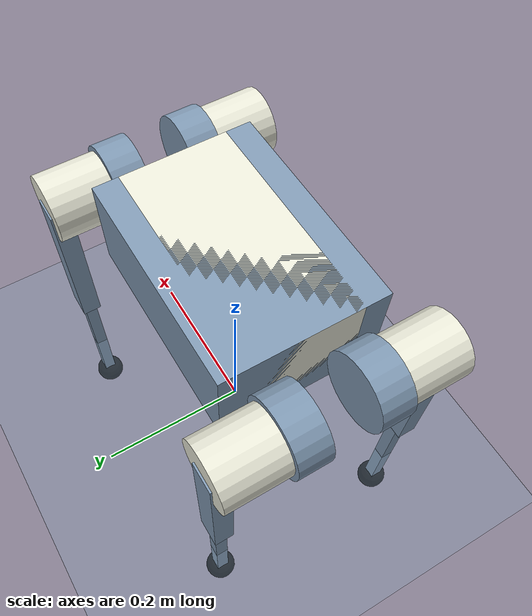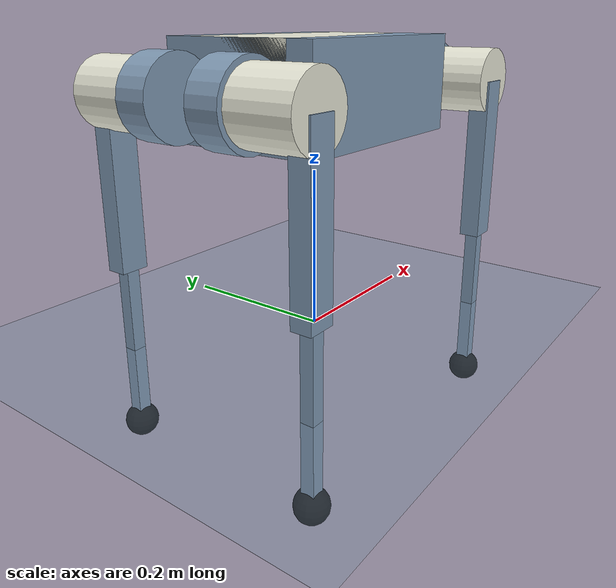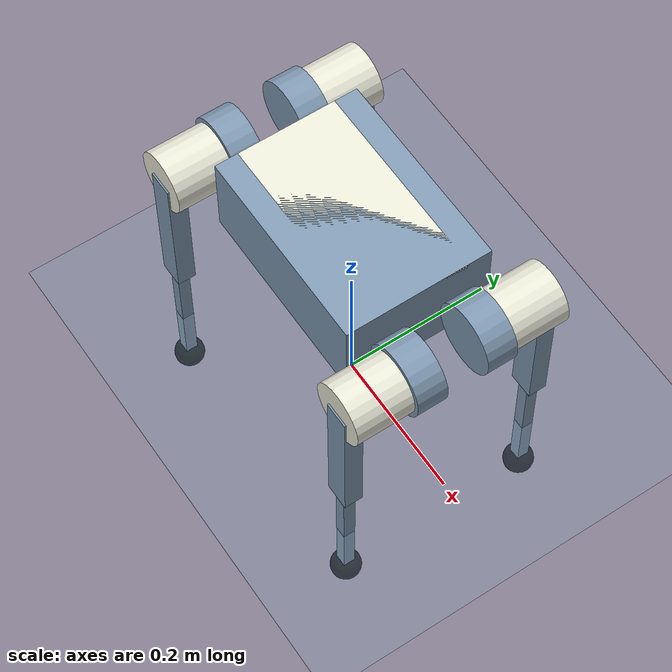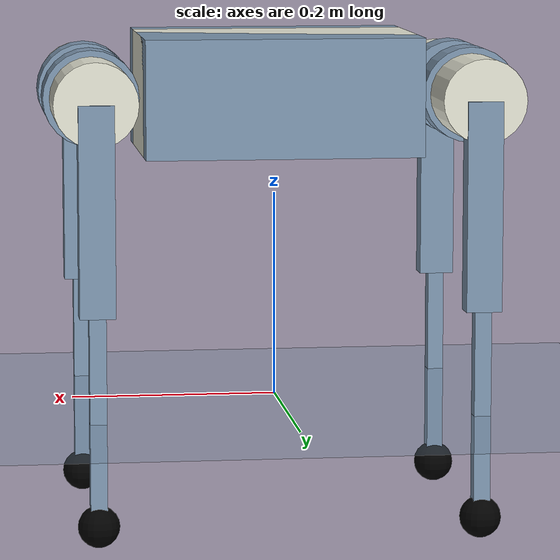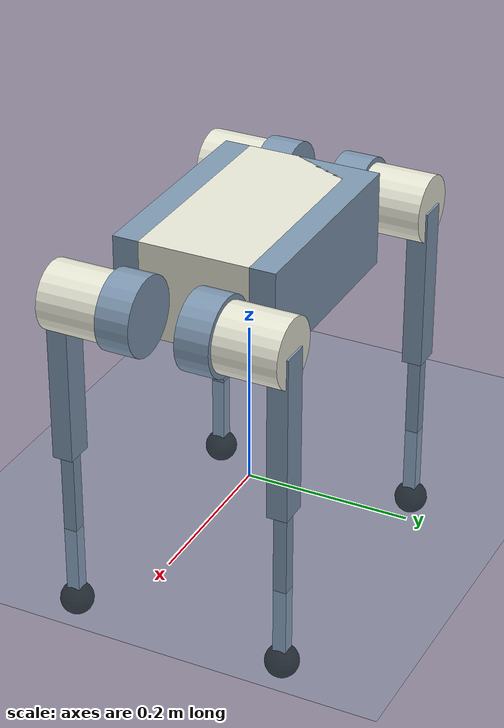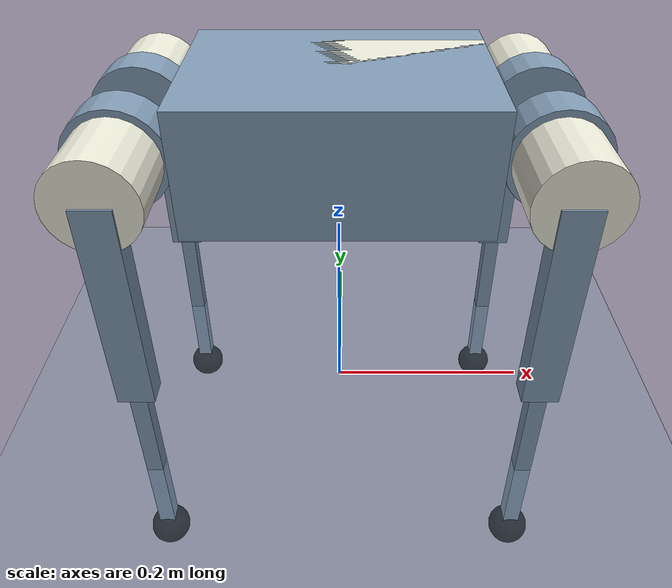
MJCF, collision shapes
<mujoco model="unitree_a1_scene">
  <include file="../model/robot.xml"/>
  <compiler meshdir="../model/assets"/>

  <statistic center="0 0 0.1" extent="1.0"/>
  <option timestep="0.005" gravity="0 0 -9.81" integrator="implicitfast" cone="elliptic" impratio="100"/>
  <visual>
    <headlight diffuse="0.82 0.86 0.9" ambient="0.42 0.48 0.54" specular="0.15 0.15 0.18"/>
    <global azimuth="120" elevation="-20"/>
  </visual>
  <asset>
    <texture type="skybox" builtin="gradient" rgb1="0.3 0.5 0.7" rgb2="0 0 0" width="512" height="3072"/>
    <texture type="2d" name="groundplane" builtin="checker" mark="edge" rgb1="0.28 0.38 0.46" rgb2="0.16 0.23 0.30" markrgb="0.56 0.64 0.70" width="300" height="300"/>
    <material name="groundplane" texture="groundplane" texuniform="true" texrepeat="5 5" reflectance="0.2"/>
  </asset>
  <worldbody>
    <light pos="0 0 3" dir="0 0 -1" directional="true"/>
    <geom name="floor" size="0 0 0.05" type="plane" material="groundplane" friction="0.8 0.02 0.01"/>
  </worldbody>
</mujoco>

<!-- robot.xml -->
<mujoco model="a1_description">
    <compiler angle="radian" meshdir="assets" />
    <size njmax="500" nconmax="100" />
    <option gravity='0 0 -9.806' iterations='50' solver='Newton' timestep='0.002'/>

    <default>
        <geom contype="1" conaffinity="1" friction="0.6 0.3 0.3" rgba="0.5 0.6 0.7 1" margin="0" group="0"/>

        <light castshadow="false" diffuse="1 1 1"/>
        <motor ctrlrange="-33.5 33.5" ctrllimited="true"/>
        <camera fovy="60"/>
        <joint damping="0.01" armature="0.01" frictionloss="0.2" />

    </default>

    <asset>
        <mesh name="trunk" file="trunk.stl" />
        <mesh name="hip" file="hip.stl" />
        <mesh name="thigh_mirror" file="thigh_mirror.stl" />
        <mesh name="calf" file="calf.stl" />
        <mesh name="thigh" file="thigh.stl" />
    </asset>

    <asset>
        <texture type="skybox" builtin="gradient" rgb1="1.0 1.0 1.0" rgb2="1.0 1.0 1.0" width="512" height="512"/>
        <texture name="plane" type="2d" builtin="flat" rgb1="1 1 1" rgb2="1 1 1" width="512" height="512" mark="cross" markrgb="0 0 0"/>
        <material name="plane" reflectance="0.0" texture="plane" texrepeat="3 3" texuniform="true"/>
    </asset>

    <visual>
        <rgba com="0.502 1.0 0 0.5" contactforce="0.98 0.4 0.4 0.7" contactpoint="1.0 1.0 0.6 0.4"/>
        <scale com="0.2" forcewidth="0.035" contactwidth="0.10" contactheight="0.04"/>
    </visual>

    <worldbody>

        <camera name="track" mode="trackcom" pos="0 -1.3 1.6" xyaxes="1 0 0 0 0.707 0.707"/>

        <body name="base_link" pos="0 0 0.3">
            <geom name="base_link_collision" type="box" size="0.1335 0.097 0.057" contype="1" conaffinity="1" />
            <inertial pos="0.0127283 0.00218554 0.000514891" quat="0.00186575 0.711506 0.000389649 0.702677" mass="4.714" diaginertia="0.0648213 0.0565803 0.0169323" />
            <joint name="floating_base_joint" type="free"/>
            <geom type="mesh" contype="0" conaffinity="0" group="1" rgba="0.913725 0.913725 0.847059 1" mesh="trunk" />
            <geom size="0.1335 0.066 0.057" type="box" rgba="0.913725 0.913725 0.847059 0" />
            <geom size="0.0005 0.0005 0.0005" type="box" contype="0" conaffinity="0" group="1" rgba="0.8 0 0 0" />
            <geom size="0.0005 0.0005 0.0005" type="box" rgba="0.8 0 0 0" />
            <site name="imu" pos="0 0 0"/>

            <body name="FR_hip" pos="0.183 -0.047 0">
            <geom name="FR_hip_collision" type="cylinder" size="0.046 0.02" quat="0.707107 0.707107 0 0" contype="1" conaffinity="1" />
                <inertial pos="-0.003311 -0.000635 3.1e-05" quat="0.507528 0.506268 0.491507 0.494499" mass="0.696" diaginertia="0.000807752 0.00055293 0.000468983" />
                <joint name="FR_hip_joint" pos="0 0 0" axis="1 0 0" limited="true" range="-0.802851 0.802851" />
                <geom quat="0 1 0 0" type="mesh" contype="0" conaffinity="0" group="1" rgba="0.913725 0.913725 0.847059 1" mesh="hip" />
                <geom size="0.04 0.04" pos="0 -0.055 0" quat="0.707107 0.707107 0 0" type="cylinder" rgba="0.913725 0.913725 0.847059 0" />
                <body name="FR_thigh" pos="0 -0.08505 0">
            <geom name="FR_thigh_collision" type="box" size="0.1 0.01225 0.017" pos="0 0 -0.1" quat="0.707107 0 0.707107 0" contype="1" conaffinity="1" />
                    <inertial pos="-0.003237 0.022327 -0.027326" quat="0.999125 -0.00256393 -0.0409531 -0.00806091" mass="1.013" diaginertia="0.00555739 0.00513936 0.00133944" />
                    <joint name="FR_thigh_joint" pos="0 0 0" axis="0 1 0" limited="true" range="-1.0472 4.18879" />
                    <geom type="mesh" contype="0" conaffinity="0" group="1" rgba="0.913725 0.913725 0.847059 1" mesh="thigh_mirror" />
                    <geom size="0.1 0.01225 0.017" pos="0 0 -0.1" quat="0.707107 0 0.707107 0" type="box" rgba="0.913725 0.913725 0.847059 0" />
                    <body name="FR_calf" pos="0 0 -0.2">
            <geom name="FR_calf_collision" type="box" size="0.1 0.008 0.008" pos="0 0 -0.1" quat="0.707107 0 0.707107 0" contype="1" conaffinity="1" />
                        <inertial pos="0.00472659 0 -0.131975" quat="0.706886 0.017653 0.017653 0.706886" mass="0.226" diaginertia="0.00340344 0.00339393 3.54834e-05" />
                        <joint name="FR_calf_joint" pos="0 0 0" axis="0 1 0" limited="true" range="-2.69653 -0.916298" />
                        <geom type="mesh" contype="0" conaffinity="0" group="1" rgba="0 0 0 1" mesh="calf" />
                        <geom size="0.1 0.008 0.008" pos="0 0 -0.1" quat="0.707107 0 0.707107 0" type="box" rgba="0 0 0 0" />
                        <geom size="0.01" pos="0 0 -0.2" contype="0" conaffinity="0" group="1" rgba="0 0 0 1" />
                        <geom name="FR_foot_collision" size="0.02" pos="0 0 -0.2" rgba="0 0 0 1" />
<site name="FR" pos="0 0 -0.2" type="sphere" size="0.01" group="5"/>
                    </body>
                </body>
            </body>
            <body name="FL_hip" pos="0.183 0.047 0">
            <geom name="FL_hip_collision" type="cylinder" size="0.046 0.02" quat="0.707107 0.707107 0 0" contype="1" conaffinity="1" />
                <inertial pos="-0.003311 0.000635 3.1e-05" quat="0.494499 0.491507 0.506268 0.507528" mass="0.696" diaginertia="0.000807752 0.00055293 0.000468983" />
                <joint name="FL_hip_joint" pos="0 0 0" axis="1 0 0" limited="true" range="-0.802851 0.802851" />
                <geom type="mesh" contype="0" conaffinity="0" group="1" rgba="0.913725 0.913725 0.847059 1" mesh="hip" />
                <geom size="0.04 0.04" pos="0 0.055 0" quat="0.707107 0.707107 0 0" type="cylinder" rgba="0.913725 0.913725 0.847059 0" />
                <body name="FL_thigh" pos="0 0.08505 0">
            <geom name="FL_thigh_collision" type="box" size="0.1 0.01225 0.017" pos="0 0 -0.1" quat="0.707107 0 0.707107 0" contype="1" conaffinity="1" />
                    <inertial pos="-0.003237 -0.022327 -0.027326" quat="0.999125 0.00256393 -0.0409531 0.00806091" mass="1.013" diaginertia="0.00555739 0.00513936 0.00133944" />
                    <joint name="FL_thigh_joint" pos="0 0 0" axis="0 1 0" limited="true" range="-1.0472 4.18879" />
                    <geom type="mesh" contype="0" conaffinity="0" group="1" rgba="0.913725 0.913725 0.847059 1" mesh="thigh" />
                    <geom size="0.1 0.01225 0.017" pos="0 0 -0.1" quat="0.707107 0 0.707107 0" type="box" rgba="0.913725 0.913725 0.847059 0" />
                    <body name="FL_calf" pos="0 0 -0.2">
            <geom name="FL_calf_collision" type="box" size="0.1 0.008 0.008" pos="0 0 -0.1" quat="0.707107 0 0.707107 0" contype="1" conaffinity="1" />
                        <inertial pos="0.00472659 0 -0.131975" quat="0.706886 0.017653 0.017653 0.706886" mass="0.226" diaginertia="0.00340344 0.00339393 3.54834e-05" />
                        <joint name="FL_calf_joint" pos="0 0 0" axis="0 1 0" limited="true" range="-2.69653 -0.916298" />
                        <geom type="mesh" contype="0" conaffinity="0" group="1" rgba="0 0 0 1" mesh="calf" />
                        <geom size="0.1 0.008 0.008" pos="0 0 -0.1" quat="0.707107 0 0.707107 0" type="box" rgba="0 0 0 0" />
                        <geom size="0.01" pos="0 0 -0.2" contype="0" conaffinity="0" group="1" rgba="0 0 0 1" />
                        <geom name="FL_foot_collision" size="0.02" pos="0 0 -0.2" rgba="0 0 0 1" />
<site name="FL" pos="0 0 -0.2" type="sphere" size="0.01" group="5"/>
                    </body>
                </body>
            </body>
            <body name="RR_hip" pos="-0.183 -0.047 0">
            <geom name="RR_hip_collision" type="cylinder" size="0.046 0.02" quat="0.707107 0.707107 0 0" contype="1" conaffinity="1" />
                <inertial pos="0.003311 -0.000635 3.1e-05" quat="0.491507 0.494499 0.507528 0.506268" mass="0.696" diaginertia="0.000807752 0.00055293 0.000468983" />
                <joint name="RR_hip_joint" pos="0 0 0" axis="1 0 0" limited="true" range="-0.802851 0.802851" />
                <geom quat="0 0 0 -1" type="mesh" contype="0" conaffinity="0" group="1" rgba="0.913725 0.913725 0.847059 1" mesh="hip" />
                <geom size="0.04 0.04" pos="0 -0.055 0" quat="0.707107 0.707107 0 0" type="cylinder" rgba="0.913725 0.913725 0.847059 0" />
                <body name="RR_thigh" pos="0 -0.08505 0">
            <geom name="RR_thigh_collision" type="box" size="0.1 0.01225 0.017" pos="0 0 -0.1" quat="0.707107 0 0.707107 0" contype="1" conaffinity="1" />
                    <inertial pos="-0.003237 0.022327 -0.027326" quat="0.999125 -0.00256393 -0.0409531 -0.00806091" mass="1.013" diaginertia="0.00555739 0.00513936 0.00133944" />
                    <joint name="RR_thigh_joint" pos="0 0 0" axis="0 1 0" limited="true" range="-1.0472 4.18879" />
                    <geom type="mesh" contype="0" conaffinity="0" group="1" rgba="0.913725 0.913725 0.847059 1" mesh="thigh_mirror" />
                    <geom size="0.1 0.01225 0.017" pos="0 0 -0.1" quat="0.707107 0 0.707107 0" type="box" rgba="0.913725 0.913725 0.847059 0" />
                    <body name="RR_calf" pos="0 0 -0.2">
            <geom name="RR_calf_collision" type="box" size="0.1 0.008 0.008" pos="0 0 -0.1" quat="0.707107 0 0.707107 0" contype="1" conaffinity="1" />
                        <inertial pos="0.00472659 0 -0.131975" quat="0.706886 0.017653 0.017653 0.706886" mass="0.226" diaginertia="0.00340344 0.00339393 3.54834e-05" />
                        <joint name="RR_calf_joint" pos="0 0 0" axis="0 1 0" limited="true" range="-2.69653 -0.916298" />
                        <geom type="mesh" contype="0" conaffinity="0" group="1" rgba="0 0 0 1" mesh="calf" />
                        <geom size="0.1 0.008 0.008" pos="0 0 -0.1" quat="0.707107 0 0.707107 0" type="box" rgba="0 0 0 0" />
                        <geom size="0.01" pos="0 0 -0.2" contype="0" conaffinity="0" group="1" rgba="0 0 0 1" />
                        <geom name="RR_foot_collision" size="0.02" pos="0 0 -0.2" rgba="0 0 0 1" />
<site name="RR" pos="0 0 -0.2" type="sphere" size="0.01" group="5"/>
                    </body>
                </body>
            </body>
            <body name="RL_hip" pos="-0.183 0.047 0">
            <geom name="RL_hip_collision" type="cylinder" size="0.046 0.02" quat="0.707107 0.707107 0 0" contype="1" conaffinity="1" />
                <inertial pos="0.003311 0.000635 3.1e-05" quat="0.506268 0.507528 0.494499 0.491507" mass="0.696" diaginertia="0.000807752 0.00055293 0.000468983" />
                <joint name="RL_hip_joint" pos="0 0 0" axis="1 0 0" limited="true" range="-0.802851 0.802851" />
                <geom quat="0 0 1 0" type="mesh" contype="0" conaffinity="0" group="1" rgba="0.913725 0.913725 0.847059 1" mesh="hip" />
                <geom size="0.04 0.04" pos="0 0.055 0" quat="0.707107 0.707107 0 0" type="cylinder" rgba="0.913725 0.913725 0.847059 0" />
                <body name="RL_thigh" pos="0 0.08505 0">
            <geom name="RL_thigh_collision" type="box" size="0.1 0.01225 0.017" pos="0 0 -0.1" quat="0.707107 0 0.707107 0" contype="1" conaffinity="1" />
                    <inertial pos="-0.003237 -0.022327 -0.027326" quat="0.999125 0.00256393 -0.0409531 0.00806091" mass="1.013" diaginertia="0.00555739 0.00513936 0.00133944" />
                    <joint name="RL_thigh_joint" pos="0 0 0" axis="0 1 0" limited="true" range="-1.0472 4.18879" />
                    <geom type="mesh" contype="0" conaffinity="0" group="1" rgba="0.913725 0.913725 0.847059 1" mesh="thigh" />
                    <geom size="0.1 0.01225 0.017" pos="0 0 -0.1" quat="0.707107 0 0.707107 0" type="box" rgba="0.913725 0.913725 0.847059 0" />
                    <body name="RL_calf" pos="0 0 -0.2">
            <geom name="RL_calf_collision" type="box" size="0.1 0.008 0.008" pos="0 0 -0.1" quat="0.707107 0 0.707107 0" contype="1" conaffinity="1" />
                        <inertial pos="0.00472659 0 -0.131975" quat="0.706886 0.017653 0.017653 0.706886" mass="0.226" diaginertia="0.00340344 0.00339393 3.54834e-05" />
                        <joint name="RL_calf_joint" pos="0 0 0" axis="0 1 0" limited="true" range="-2.69653 -0.916298" />
                        <geom type="mesh" contype="0" conaffinity="0" group="1" rgba="0 0 0 1" mesh="calf" />
                        <geom size="0.1 0.008 0.008" pos="0 0 -0.1" quat="0.707107 0 0.707107 0" type="box" rgba="0 0 0 0" />
                        <geom size="0.01" pos="0 0 -0.2" contype="0" conaffinity="0" group="1" rgba="0 0 0 1" />
                        <geom name="RL_foot_collision" size="0.02" pos="0 0 -0.2" rgba="0 0 0 1" />
<site name="RL" pos="0 0 -0.2" type="sphere" size="0.01" group="5"/>
                    </body>
                </body>
            </body>
        </body>
    </worldbody>
    <actuator>

        <motor name="FR_hip"       gear="1" joint="FR_hip_joint"/>
        <motor name="FR_thigh"       gear="1" joint="FR_thigh_joint"/>
        <motor name="FR_calf"       gear="1" joint="FR_calf_joint"/>
        <motor name="FL_hip"     gear="1" joint="FL_hip_joint"/>
        <motor name="FL_thigh"     gear="1" joint="FL_thigh_joint"/>
        <motor name="FL_calf"     gear="1" joint="FL_calf_joint"/>
        <motor name="RR_hip"      gear="1" joint="RR_hip_joint"/>
        <motor name="RR_thigh"   gear="1" joint="RR_thigh_joint"/>
        <motor name="RR_calf"   gear="1" joint="RR_calf_joint" />
        <motor name="RL_hip"      gear="1" joint="RL_hip_joint"/>
        <motor name="RL_thigh"      gear="1" joint="RL_thigh_joint"/>
        <motor name="RL_calf"      gear="1" joint="RL_calf_joint"/>
    </actuator>

    <sensor>

        <jointpos name="FR_hip_pos"     joint="FR_hip_joint"/>
        <jointpos name="FR_thigh_pos"   joint="FR_thigh_joint"/>
        <jointpos name="FR_calf_pos"    joint="FR_calf_joint"/>
        <jointpos name="FL_hip_pos"     joint="FL_hip_joint"/>
        <jointpos name="FL_thigh_pos"   joint="FL_thigh_joint"/>
        <jointpos name="FL_calf_pos"    joint="FL_calf_joint"/>
        <jointpos name="RR_hip_pos"     joint="RR_hip_joint"/>
        <jointpos name="RR_thigh_pos"   joint="RR_thigh_joint"/>
        <jointpos name="RR_calf_pos"    joint="RR_calf_joint" />
        <jointpos name="RL_hip_pos"     joint="RL_hip_joint"/>
        <jointpos name="RL_thigh_pos"   joint="RL_thigh_joint"/>
        <jointpos name="RL_calf_pos"    joint="RL_calf_joint"/>

        <jointvel name="FR_hip_vel"     joint="FR_hip_joint"/>
        <jointvel name="FR_thigh_vel"   joint="FR_thigh_joint"/>
        <jointvel name="FR_calf_vel"    joint="FR_calf_joint"/>
        <jointvel name="FL_hip_vel"     joint="FL_hip_joint"/>
        <jointvel name="FL_thigh_vel"   joint="FL_thigh_joint"/>
        <jointvel name="FL_calf_vel"    joint="FL_calf_joint"/>
        <jointvel name="RR_hip_vel"     joint="RR_hip_joint"/>
        <jointvel name="RR_thigh_vel"   joint="RR_thigh_joint"/>
        <jointvel name="RR_calf_vel"    joint="RR_calf_joint" />
        <jointvel name="RL_hip_vel"     joint="RL_hip_joint"/>
        <jointvel name="RL_thigh_vel"   joint="RL_thigh_joint"/>
        <jointvel name="RL_calf_vel"    joint="RL_calf_joint"/>

        <accelerometer name="Body_Acc" site="imu"/>

        <gyro name="Body_Gyro" site="imu"/>
        <velocimeter name="imu_lin_vel" site="imu"/>
        <gyro name="imu_ang_vel" site="imu"/>

        <framepos name="Body_Pos" objtype="site" objname="imu"/>

        <framequat name="Body_Quat" objtype="site" objname="imu"/>

    </sensor>

</mujoco>
